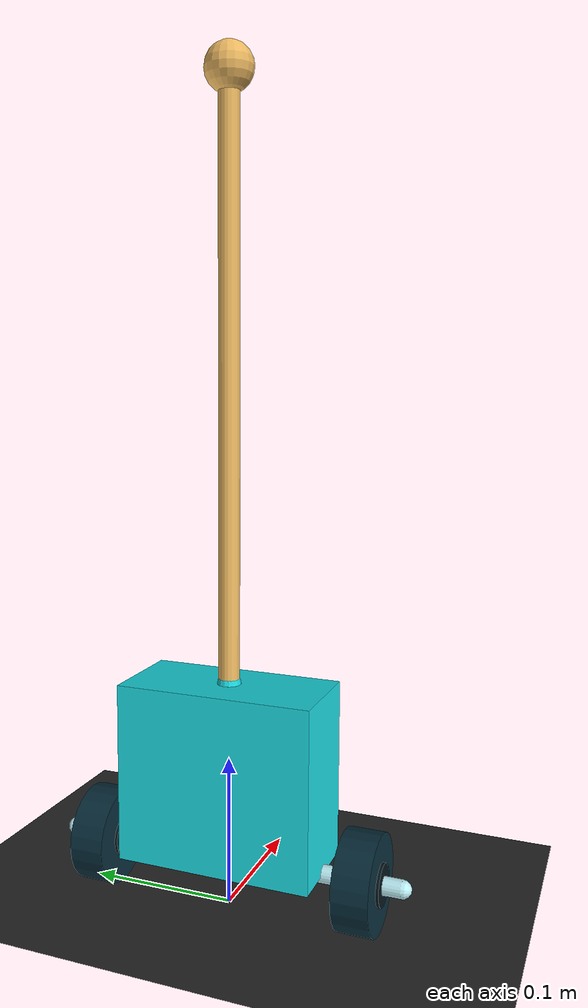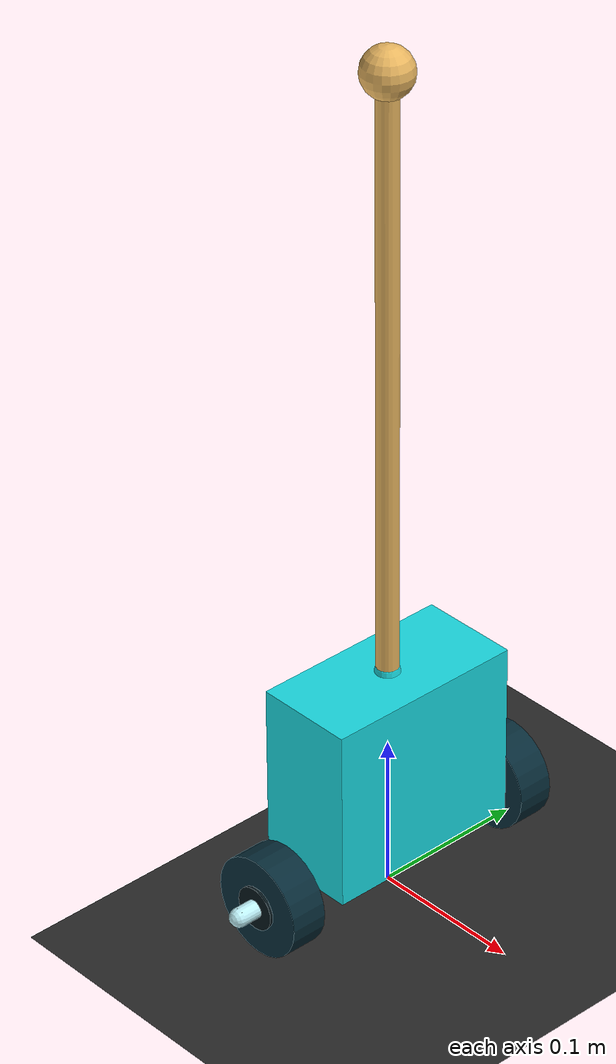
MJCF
<mujoco model="wheeltec_balance_vehicle_visual">
  <compiler angle="degree" coordinate="local" inertiafromgeom="true"/>
  <option timestep="0.01" gravity="0 0 -9.81"/>

  <asset>
    <texture name="grid" type="2d" builtin="checker" width="512" height="512" rgb1="0.12 0.12 0.12" rgb2="0.20 0.20 0.20"/>
    <material name="floor_mat" texture="grid" texrepeat="8 8" reflectance="0.25"/>
    <material name="wheel_mat" rgba="0.03 0.17 0.22 1"/>
    <material name="wheel_side_mat" rgba="0.02 0.08 0.10 1"/>
    <material name="body_mat" rgba="0.10 0.85 0.88 1"/>
    <material name="rod_mat" rgba="0.92 0.72 0.38 1"/>
    <material name="axle_mat" rgba="0.75 0.95 0.98 1"/>
  </asset>

  <visual>
    <global azimuth="-45" elevation="-18" offwidth="1280" offheight="720"/>
    <quality shadowsize="2048"/>
    <map znear="0.01" zfar="20"/>
  </visual>

  <worldbody>
    <light name="key" pos="-0.8 -1.0 2.0" dir="0.7 0.8 -1.2" diffuse="0.9 0.9 0.85"/>
    <light name="fill" pos="1.2 0.8 1.2" dir="-1 -0.5 -0.8" diffuse="0.25 0.35 0.45"/>
    <camera name="presentation" pos="0.78 -1.28 0.62" xyaxes="0.86 0.51 0.00 -0.17 0.29 0.94" fovy="38"/>
    <geom name="floor" type="plane" pos="0 0 0" size="2.0 2.0 0.02" material="floor_mat"/>

    <body name="axle_center" pos="0 0 0.0325">
      <joint name="slide_x" type="slide" axis="1 0 0" limited="false" damping="0"/>
      <geom name="axle" type="capsule" fromto="0 -0.118 0 0 0.118 0" size="0.006" material="axle_mat"/>

      <body name="left_wheel" pos="0 0.092 0">
        <joint name="left_wheel_spin" type="hinge" axis="0 1 0" limited="false" damping="0"/>
        <geom name="left_wheel_tire" type="cylinder" fromto="0 -0.012 0 0 0.012 0" size="0.0325" material="wheel_mat"/>
        <geom name="left_wheel_hub" type="cylinder" fromto="0 -0.014 0 0 0.014 0" size="0.014" material="wheel_side_mat"/>
      </body>

      <body name="right_wheel" pos="0 -0.092 0">
        <joint name="right_wheel_spin" type="hinge" axis="0 1 0" limited="false" damping="0"/>
        <geom name="right_wheel_tire" type="cylinder" fromto="0 -0.012 0 0 0.012 0" size="0.0325" material="wheel_mat"/>
        <geom name="right_wheel_hub" type="cylinder" fromto="0 -0.014 0 0 0.014 0" size="0.014" material="wheel_side_mat"/>
      </body>

      <body name="body_pitch_frame" pos="0 0 0">
        <joint name="body_pitch" type="hinge" axis="0 1 0" limited="false" damping="0"/>
        <geom name="body_box" type="box" pos="0 0 0.0595" size="0.0325 0.066 0.0595" material="body_mat"/>
        <geom name="body_axis" type="capsule" fromto="0 0 0 0 0 0.119" size="0.008" material="body_mat"/>

        <body name="upper_rod_frame" pos="0 0 0.119">
          <joint name="upper_pitch" type="hinge" axis="0 1 0" limited="false" damping="0"/>
          <geom name="upper_rod" type="capsule" fromto="0 0 0 0 0 0.390" size="0.007" material="rod_mat"/>
          <geom name="upper_tip" type="sphere" pos="0 0 0.390" size="0.016" material="rod_mat"/>
        </body>
      </body>
    </body>
  </worldbody>
</mujoco>
